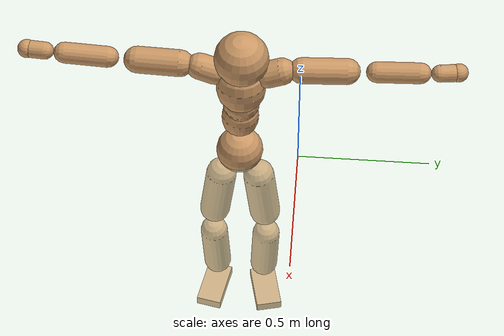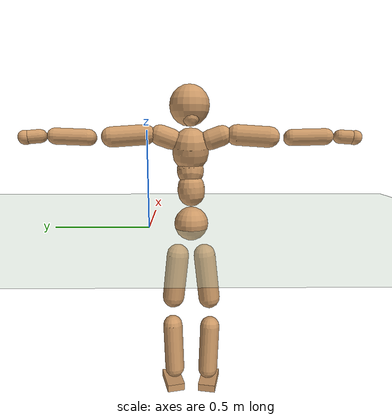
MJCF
<mujoco model="humanoid">
  <compiler coordinate="local"/>
  <default>
    <joint damping="0.0" armature="0.01" stiffness="0.0" limited="true"/>
    <geom conaffinity="1" condim="3" contype="7" margin="0.001" rgba="0.8 0.6 .4 1"/>
  </default>
  <asset>
    <texture type="skybox" builtin="gradient" rgb1=".4 .5 .6" rgb2="0 0 0" width="100" height="100"/>
    <texture builtin="flat" height="1278" mark="cross" markrgb="1 1 1" name="texgeom" random="0.01" rgb1="0.8 0.6 0.4" rgb2="0.8 0.6 0.4" type="cube" width="127"/>
    <texture builtin="checker" height="100" name="texplane" rgb1="0 0 0" rgb2="0.8 0.8 0.8" type="2d" width="100"/>
    <material name="MatPlane" reflectance="0.5" shininess="1" specular="1" texrepeat="60 60" texture="texplane"/>
    <material name="geom" texture="texgeom" texuniform="true"/>
  </asset>
  <worldbody>
    <light cutoff="100" diffuse="1 1 1" dir="-0 0 -1.3" directional="true" exponent="1" pos="0 0 1.3" specular=".1 .1 .1"/>
    <geom conaffinity="1" condim="3" name="floor" pos="0 0 0" rgba="0.8 0.9 0.8 1" size="100 100 .2" type="plane" material="MatPlane"/>
    <body name="Pelvis" pos="-0.0032 -0.2234 0.0215">
      <freejoint name="Pelvis"/>
      <geom type="sphere" contype="1" conaffinity="1" density="500" size="0.0894" pos="0.0000 0.0000 0.0000" name="Pelvis"/>
      <body name="L_Hip" pos="-0.0093 0.0641 -0.0908">
        <joint name="L_Hip_x" type="hinge" pos="0 0 0" axis="1 0 0" stiffness="800" damping="80" armature="0.02" range="-180.0000 180.0000"/>
        <joint name="L_Hip_y" type="hinge" pos="0 0 0" axis="0 1 0" stiffness="800" damping="80" armature="0.02" range="-180.0000 180.0000"/>
        <joint name="L_Hip_z" type="hinge" pos="0 0 0" axis="0 0 1" stiffness="800" damping="80" armature="0.02" range="-180.0000 180.0000"/>
        <geom type="capsule" contype="1" conaffinity="1" density="500" fromto="0.0006 0.0087 -0.0815 0.0026 0.0347 -0.3259" size="0.0597" name="L_Hip"/>
        <body name="L_Knee" pos="0.0032 0.0434 -0.4074">
          <joint name="L_Knee_x" type="hinge" pos="0 0 0" axis="1 0 0" stiffness="800" damping="80" armature="0.02" range="-180.0000 180.0000"/>
          <joint name="L_Knee_y" type="hinge" pos="0 0 0" axis="0 1 0" stiffness="800" damping="80" armature="0.02" range="-180.0000 180.0000"/>
          <joint name="L_Knee_z" type="hinge" pos="0 0 0" axis="0 0 1" stiffness="800" damping="80" armature="0.02" range="-180.0000 180.0000"/>
          <geom type="capsule" contype="1" conaffinity="1" density="500" fromto="-0.0085 -0.0030 -0.0864 -0.0339 -0.0121 -0.3457" size="0.0536" name="L_Knee"/>
          <body name="L_Ankle" pos="-0.0423 -0.0151 -0.4321">
            <joint name="L_Ankle_x" type="hinge" pos="0 0 0" axis="1 0 0" stiffness="800" damping="80" armature="0.02" range="-180.0000 180.0000"/>
            <joint name="L_Ankle_y" type="hinge" pos="0 0 0" axis="0 1 0" stiffness="800" damping="80" armature="0.02" range="-180.0000 180.0000"/>
            <joint name="L_Ankle_z" type="hinge" pos="0 0 0" axis="0 0 1" stiffness="800" damping="80" armature="0.02" range="-180.0000 180.0000"/>
            <geom type="box" contype="1" conaffinity="1" density="500" pos="0.0627 0.0147 -0.0297" size="0.0886 0.0498 0.021" quat="0.9934 0.0000 0.0000 0.1151" name="L_Ankle"/>
            <body name="L_Toe" pos="0.1253 0.0294 -0.0594">
              <joint name="L_Toe_x" type="hinge" pos="0 0 0" axis="1 0 0" stiffness="500" damping="50" armature="0.02" range="-180.0000 180.0000"/>
              <joint name="L_Toe_y" type="hinge" pos="0 0 0" axis="0 1 0" stiffness="500" damping="50" armature="0.02" range="-180.0000 180.0000"/>
              <joint name="L_Toe_z" type="hinge" pos="0 0 0" axis="0 0 1" stiffness="500" damping="50" armature="0.02" range="-180.0000 180.0000"/>
              <geom type="box" contype="1" conaffinity="1" density="500" pos="0.0000 0.0000 0.0300" size="0.001 0.0024 0.0011" quat="0.9927 0.0000 0.0000 0.1208" name="L_Toe"/>
            </body>
          </body>
        </body>
      </body>
      <body name="R_Hip" pos="-0.0076 -0.0624 -0.0893">
        <joint name="R_Hip_x" type="hinge" pos="0 0 0" axis="1 0 0" stiffness="800" damping="80" armature="0.02" range="-180.0000 180.0000"/>
        <joint name="R_Hip_y" type="hinge" pos="0 0 0" axis="0 1 0" stiffness="800" damping="80" armature="0.02" range="-180.0000 180.0000"/>
        <joint name="R_Hip_z" type="hinge" pos="0 0 0" axis="0 0 1" stiffness="800" damping="80" armature="0.02" range="-180.0000 180.0000"/>
        <geom type="capsule" contype="1" conaffinity="1" density="500" fromto="-0.0006 -0.0092 -0.0830 -0.0026 -0.0370 -0.3321" size="0.0585" name="R_Hip"/>
        <body name="R_Knee" pos="-0.0032 -0.0462 -0.4151">
          <joint name="R_Knee_x" type="hinge" pos="0 0 0" axis="1 0 0" stiffness="800" damping="80" armature="0.02" range="-180.0000 180.0000"/>
          <joint name="R_Knee_y" type="hinge" pos="0 0 0" axis="0 1 0" stiffness="800" damping="80" armature="0.02" range="-180.0000 180.0000"/>
          <joint name="R_Knee_z" type="hinge" pos="0 0 0" axis="0 0 1" stiffness="800" damping="80" armature="0.02" range="-180.0000 180.0000"/>
          <geom type="capsule" contype="1" conaffinity="1" density="500" fromto="-0.0082 0.0035 -0.0863 -0.0327 0.0140 -0.3454" size="0.0536" name="R_Knee"/>
          <body name="R_Ankle" pos="-0.0409 0.0175 -0.4317">
            <joint name="R_Ankle_x" type="hinge" pos="0 0 0" axis="1 0 0" stiffness="800" damping="80" armature="0.02" range="-180.0000 180.0000"/>
            <joint name="R_Ankle_y" type="hinge" pos="0 0 0" axis="0 1 0" stiffness="800" damping="80" armature="0.02" range="-180.0000 180.0000"/>
            <joint name="R_Ankle_z" type="hinge" pos="0 0 0" axis="0 0 1" stiffness="800" damping="80" armature="0.02" range="-180.0000 180.0000"/>
            <geom type="box" contype="1" conaffinity="1" density="500" pos="0.0648 -0.0131 -0.0256" size="0.0908 0.049 0.0213" quat="0.9950 0.0000 0.0000 -0.0999" name="R_Ankle"/>
            <body name="R_Toe" pos="0.1295 -0.0263 -0.0511">
              <joint name="R_Toe_x" type="hinge" pos="0 0 0" axis="1 0 0" stiffness="500" damping="50" armature="0.02" range="-180.0000 180.0000"/>
              <joint name="R_Toe_y" type="hinge" pos="0 0 0" axis="0 1 0" stiffness="500" damping="50" armature="0.02" range="-180.0000 180.0000"/>
              <joint name="R_Toe_z" type="hinge" pos="0 0 0" axis="0 0 1" stiffness="500" damping="50" armature="0.02" range="-180.0000 180.0000"/>
              <geom type="box" contype="1" conaffinity="1" density="500" pos="0.0000 0.0000 0.0263" size="0.0009 0.0024 0.0011" quat="0.9958 0.0000 0.0000 -0.0912" name="R_Toe"/>
            </body>
          </body>
        </body>
      </body>
      <body name="Torso" pos="-0.0243 -0.0029 0.11">
        <joint name="Torso_x" type="hinge" pos="0 0 0" axis="1 0 0" stiffness="1000" damping="100" armature="0.02" range="-180.0000 180.0000"/>
        <joint name="Torso_y" type="hinge" pos="0 0 0" axis="0 1 0" stiffness="1000" damping="100" armature="0.02" range="-180.0000 180.0000"/>
        <joint name="Torso_z" type="hinge" pos="0 0 0" axis="0 0 1" stiffness="1000" damping="100" armature="0.02" range="-180.0000 180.0000"/>
        <geom type="capsule" contype="1" conaffinity="1" density="500" fromto="0.0021 0.0042 0.0863 0.0014 0.0028 0.0575" size="0.0695" name="Torso"/>
        <body name="Spine" pos="0.0036 0.0071 0.1438">
          <joint name="Spine_x" type="hinge" pos="0 0 0" axis="1 0 0" stiffness="1000" damping="100" armature="0.02" range="-180.0000 180.0000"/>
          <joint name="Spine_y" type="hinge" pos="0 0 0" axis="0 1 0" stiffness="1000" damping="100" armature="0.02" range="-180.0000 180.0000"/>
          <joint name="Spine_z" type="hinge" pos="0 0 0" axis="0 0 1" stiffness="1000" damping="100" armature="0.02" range="-180.0000 180.0000"/>
          <geom type="capsule" contype="1" conaffinity="1" density="500" fromto="0.0117 0.0007 0.0329 0.0078 0.0005 0.0220" size="0.0689" name="Spine"/>
          <body name="Chest" pos="0.0195 0.0012 0.0549">
            <joint name="Chest_x" type="hinge" pos="0 0 0" axis="1 0 0" stiffness="1000" damping="100" armature="0.02" range="-180.0000 180.0000"/>
            <joint name="Chest_y" type="hinge" pos="0 0 0" axis="0 1 0" stiffness="1000" damping="100" armature="0.02" range="-180.0000 180.0000"/>
            <joint name="Chest_z" type="hinge" pos="0 0 0" axis="0 0 1" stiffness="1000" damping="100" armature="0.02" range="-180.0000 180.0000"/>
            <geom type="capsule" contype="1" conaffinity="1" density="500" fromto="-0.0179 -0.0017 0.0907 -0.0120 -0.0011 0.0604" size="0.0924" name="Chest"/>
            <body name="Neck" pos="-0.0268 -0.0046 0.216">
              <joint name="Neck_x" type="hinge" pos="0 0 0" axis="1 0 0" stiffness="500" damping="50" armature="0.02" range="-180.0000 180.0000"/>
              <joint name="Neck_y" type="hinge" pos="0 0 0" axis="0 1 0" stiffness="500" damping="50" armature="0.02" range="-180.0000 180.0000"/>
              <joint name="Neck_z" type="hinge" pos="0 0 0" axis="0 0 1" stiffness="500" damping="50" armature="0.02" range="-180.0000 180.0000"/>
              <geom type="capsule" contype="1" conaffinity="1" density="500" fromto="0.0112 0.0016 0.0148 0.0448 0.0063 0.0590" size="0.0434" name="Neck"/>
              <body name="Head" pos="0.0559 0.0078 0.0738">
                <joint name="Head_x" type="hinge" pos="0 0 0" axis="1 0 0" stiffness="500" damping="50" armature="0.02" range="-180.0000 180.0000"/>
                <joint name="Head_y" type="hinge" pos="0 0 0" axis="0 1 0" stiffness="500" damping="50" armature="0.02" range="-180.0000 180.0000"/>
                <joint name="Head_z" type="hinge" pos="0 0 0" axis="0 0 1" stiffness="500" damping="50" armature="0.02" range="-180.0000 180.0000"/>
                <geom type="sphere" contype="1" conaffinity="1" density="500" size="0.1013" pos="0.0000 0.0000 0.0000" name="Head"/>
              </body>
            </body>
            <body name="L_Thorax" pos="-0.0292 0.0758 0.1205">
              <joint name="L_Thorax_x" type="hinge" pos="0 0 0" axis="1 0 0" stiffness="500" damping="50" armature="0.02" range="-180.0000 180.0000"/>
              <joint name="L_Thorax_y" type="hinge" pos="0 0 0" axis="0 1 0" stiffness="500" damping="50" armature="0.02" range="-180.0000 180.0000"/>
              <joint name="L_Thorax_z" type="hinge" pos="0 0 0" axis="0 0 1" stiffness="500" damping="50" armature="0.02" range="-180.0000 180.0000"/>
              <geom type="capsule" contype="1" conaffinity="1" density="500" fromto="-0.0014 0.0181 0.0064 -0.0057 0.0723 0.0254" size="0.051" name="L_Thorax"/>
              <body name="L_Shoulder" pos="-0.0072 0.0904 0.0318">
                <joint name="L_Shoulder_x" type="hinge" pos="0 0 0" axis="1 0 0" stiffness="500" damping="50" armature="0.02" range="-720.0000 720.0000"/>
                <joint name="L_Shoulder_y" type="hinge" pos="0 0 0" axis="0 1 0" stiffness="500" damping="50" armature="0.02" range="-720.0000 720.0000"/>
                <joint name="L_Shoulder_z" type="hinge" pos="0 0 0" axis="0 0 1" stiffness="500" damping="50" armature="0.02" range="-720.0000 720.0000"/>
                <geom type="capsule" contype="1" conaffinity="1" density="500" fromto="-0.0055 0.0551 -0.0037 -0.0221 0.2204 -0.0150" size="0.0494" name="L_Shoulder"/>
                <body name="L_Elbow" pos="-0.0277 0.2755 -0.0187">
                  <joint name="L_Elbow_x" type="hinge" pos="0 0 0" axis="1 0 0" stiffness="500" damping="50" armature="0.02" range="-720.0000 720.0000"/>
                  <joint name="L_Elbow_y" type="hinge" pos="0 0 0" axis="0 1 0" stiffness="500" damping="50" armature="0.02" range="-720.0000 720.0000"/>
                  <joint name="L_Elbow_z" type="hinge" pos="0 0 0" axis="0 0 1" stiffness="500" damping="50" armature="0.02" range="-720.0000 720.0000"/>
                  <geom type="capsule" contype="1" conaffinity="1" density="500" fromto="-0.0005 0.0536 0.0021 -0.0022 0.2143 0.0083" size="0.0395" name="L_Elbow"/>
                  <body name="L_Wrist" pos="-0.0027 0.2679 0.0104">
                    <joint name="L_Wrist_x" type="hinge" pos="0 0 0" axis="1 0 0" stiffness="300" damping="30" armature="0.02" range="-180.0000 180.0000"/>
                    <joint name="L_Wrist_y" type="hinge" pos="0 0 0" axis="0 1 0" stiffness="300" damping="30" armature="0.02" range="-180.0000 180.0000"/>
                    <joint name="L_Wrist_z" type="hinge" pos="0 0 0" axis="0 0 1" stiffness="300" damping="30" armature="0.02" range="-180.0000 180.0000"/>
                    <geom type="capsule" contype="1" conaffinity="1" density="500" fromto="-0.0032 0.0175 -0.0016 -0.0130 0.0699 -0.0063" size="0.0326" name="L_Wrist"/>
                    <body name="L_Hand" pos="-0.0162 0.0873 -0.0078">
                      <joint name="L_Hand_x" type="hinge" pos="0 0 0" axis="1 0 0" stiffness="300" damping="30" armature="0.02" range="-180.0000 180.0000"/>
                      <joint name="L_Hand_y" type="hinge" pos="0 0 0" axis="0 1 0" stiffness="300" damping="30" armature="0.02" range="-180.0000 180.0000"/>
                      <joint name="L_Hand_z" type="hinge" pos="0 0 0" axis="0 0 1" stiffness="300" damping="30" armature="0.02" range="-180.0000 180.0000"/>
                      <geom type="sphere" contype="1" conaffinity="1" density="500" size="0.0347" pos="0.0000 0.0000 0.0000" name="L_Hand"/>
                    </body>
                  </body>
                </body>
              </body>
            </body>
            <body name="R_Thorax" pos="-0.0337 -0.0795 0.1168">
              <joint name="R_Thorax_x" type="hinge" pos="0 0 0" axis="1 0 0" stiffness="500" damping="50" armature="0.02" range="-180.0000 180.0000"/>
              <joint name="R_Thorax_y" type="hinge" pos="0 0 0" axis="0 1 0" stiffness="500" damping="50" armature="0.02" range="-180.0000 180.0000"/>
              <joint name="R_Thorax_z" type="hinge" pos="0 0 0" axis="0 0 1" stiffness="500" damping="50" armature="0.02" range="-180.0000 180.0000"/>
              <geom type="capsule" contype="1" conaffinity="1" density="500" fromto="-0.0013 -0.0191 0.0068 -0.0053 -0.0765 0.0271" size="0.0499" name="R_Thorax"/>
              <body name="R_Shoulder" pos="-0.0066 -0.0956 0.0338">
                <joint name="R_Shoulder_x" type="hinge" pos="0 0 0" axis="1 0 0" stiffness="500" damping="50" armature="0.02" range="-720.0000 720.0000"/>
                <joint name="R_Shoulder_y" type="hinge" pos="0 0 0" axis="0 1 0" stiffness="500" damping="50" armature="0.02" range="-720.0000 720.0000"/>
                <joint name="R_Shoulder_z" type="hinge" pos="0 0 0" axis="0 0 1" stiffness="500" damping="50" armature="0.02" range="-720.0000 720.0000"/>
                <geom type="capsule" contype="1" conaffinity="1" density="500" fromto="-0.0044 -0.0534 -0.0034 -0.0176 -0.2136 -0.0137" size="0.0507" name="R_Shoulder"/>
                <body name="R_Elbow" pos="-0.022 -0.267 -0.0171">
                  <joint name="R_Elbow_x" type="hinge" pos="0 0 0" axis="1 0 0" stiffness="500" damping="50" armature="0.02" range="-720.0000 720.0000"/>
                  <joint name="R_Elbow_y" type="hinge" pos="0 0 0" axis="0 1 0" stiffness="500" damping="50" armature="0.02" range="-720.0000 720.0000"/>
                  <joint name="R_Elbow_z" type="hinge" pos="0 0 0" axis="0 0 1" stiffness="500" damping="50" armature="0.02" range="-720.0000 720.0000"/>
                  <geom type="capsule" contype="1" conaffinity="1" density="500" fromto="-0.0017 -0.0545 0.0014 -0.0068 -0.2180 0.0055" size="0.0397" name="R_Elbow"/>
                  <body name="R_Wrist" pos="-0.0085 -0.2725 0.0069">
                    <joint name="R_Wrist_x" type="hinge" pos="0 0 0" axis="1 0 0" stiffness="300" damping="30" armature="0.02" range="-180.0000 180.0000"/>
                    <joint name="R_Wrist_y" type="hinge" pos="0 0 0" axis="0 1 0" stiffness="300" damping="30" armature="0.02" range="-180.0000 180.0000"/>
                    <joint name="R_Wrist_z" type="hinge" pos="0 0 0" axis="0 0 1" stiffness="300" damping="30" armature="0.02" range="-180.0000 180.0000"/>
                    <geom type="capsule" contype="1" conaffinity="1" density="500" fromto="-0.0021 -0.0174 -0.0011 -0.0082 -0.0695 -0.0045" size="0.033" name="R_Wrist"/>
                    <body name="R_Hand" pos="-0.0103 -0.0869 -0.0057">
                      <joint name="R_Hand_x" type="hinge" pos="0 0 0" axis="1 0 0" stiffness="300" damping="30" armature="0.02" range="-180.0000 180.0000"/>
                      <joint name="R_Hand_y" type="hinge" pos="0 0 0" axis="0 1 0" stiffness="300" damping="30" armature="0.02" range="-180.0000 180.0000"/>
                      <joint name="R_Hand_z" type="hinge" pos="0 0 0" axis="0 0 1" stiffness="300" damping="30" armature="0.02" range="-180.0000 180.0000"/>
                      <geom type="sphere" contype="1" conaffinity="1" density="500" size="0.0347" pos="0.0000 0.0000 0.0000" name="R_Hand"/>
                    </body>
                  </body>
                </body>
              </body>
            </body>
          </body>
        </body>
      </body>
    </body>
  </worldbody>
  <actuator>
    <motor name="L_Hip_x" joint="L_Hip_x" gear="500"/>
    <motor name="L_Hip_y" joint="L_Hip_y" gear="500"/>
    <motor name="L_Hip_z" joint="L_Hip_z" gear="500"/>
    <motor name="L_Knee_x" joint="L_Knee_x" gear="500"/>
    <motor name="L_Knee_y" joint="L_Knee_y" gear="500"/>
    <motor name="L_Knee_z" joint="L_Knee_z" gear="500"/>
    <motor name="L_Ankle_x" joint="L_Ankle_x" gear="500"/>
    <motor name="L_Ankle_y" joint="L_Ankle_y" gear="500"/>
    <motor name="L_Ankle_z" joint="L_Ankle_z" gear="500"/>
    <motor name="L_Toe_x" joint="L_Toe_x" gear="500"/>
    <motor name="L_Toe_y" joint="L_Toe_y" gear="500"/>
    <motor name="L_Toe_z" joint="L_Toe_z" gear="500"/>
    <motor name="R_Hip_x" joint="R_Hip_x" gear="500"/>
    <motor name="R_Hip_y" joint="R_Hip_y" gear="500"/>
    <motor name="R_Hip_z" joint="R_Hip_z" gear="500"/>
    <motor name="R_Knee_x" joint="R_Knee_x" gear="500"/>
    <motor name="R_Knee_y" joint="R_Knee_y" gear="500"/>
    <motor name="R_Knee_z" joint="R_Knee_z" gear="500"/>
    <motor name="R_Ankle_x" joint="R_Ankle_x" gear="500"/>
    <motor name="R_Ankle_y" joint="R_Ankle_y" gear="500"/>
    <motor name="R_Ankle_z" joint="R_Ankle_z" gear="500"/>
    <motor name="R_Toe_x" joint="R_Toe_x" gear="500"/>
    <motor name="R_Toe_y" joint="R_Toe_y" gear="500"/>
    <motor name="R_Toe_z" joint="R_Toe_z" gear="500"/>
    <motor name="Torso_x" joint="Torso_x" gear="500"/>
    <motor name="Torso_y" joint="Torso_y" gear="500"/>
    <motor name="Torso_z" joint="Torso_z" gear="500"/>
    <motor name="Spine_x" joint="Spine_x" gear="500"/>
    <motor name="Spine_y" joint="Spine_y" gear="500"/>
    <motor name="Spine_z" joint="Spine_z" gear="500"/>
    <motor name="Chest_x" joint="Chest_x" gear="500"/>
    <motor name="Chest_y" joint="Chest_y" gear="500"/>
    <motor name="Chest_z" joint="Chest_z" gear="500"/>
    <motor name="Neck_x" joint="Neck_x" gear="500"/>
    <motor name="Neck_y" joint="Neck_y" gear="500"/>
    <motor name="Neck_z" joint="Neck_z" gear="500"/>
    <motor name="Head_x" joint="Head_x" gear="500"/>
    <motor name="Head_y" joint="Head_y" gear="500"/>
    <motor name="Head_z" joint="Head_z" gear="500"/>
    <motor name="L_Thorax_x" joint="L_Thorax_x" gear="500"/>
    <motor name="L_Thorax_y" joint="L_Thorax_y" gear="500"/>
    <motor name="L_Thorax_z" joint="L_Thorax_z" gear="500"/>
    <motor name="L_Shoulder_x" joint="L_Shoulder_x" gear="500"/>
    <motor name="L_Shoulder_y" joint="L_Shoulder_y" gear="500"/>
    <motor name="L_Shoulder_z" joint="L_Shoulder_z" gear="500"/>
    <motor name="L_Elbow_x" joint="L_Elbow_x" gear="500"/>
    <motor name="L_Elbow_y" joint="L_Elbow_y" gear="500"/>
    <motor name="L_Elbow_z" joint="L_Elbow_z" gear="500"/>
    <motor name="L_Wrist_x" joint="L_Wrist_x" gear="500"/>
    <motor name="L_Wrist_y" joint="L_Wrist_y" gear="500"/>
    <motor name="L_Wrist_z" joint="L_Wrist_z" gear="500"/>
    <motor name="L_Hand_x" joint="L_Hand_x" gear="500"/>
    <motor name="L_Hand_y" joint="L_Hand_y" gear="500"/>
    <motor name="L_Hand_z" joint="L_Hand_z" gear="500"/>
    <motor name="R_Thorax_x" joint="R_Thorax_x" gear="500"/>
    <motor name="R_Thorax_y" joint="R_Thorax_y" gear="500"/>
    <motor name="R_Thorax_z" joint="R_Thorax_z" gear="500"/>
    <motor name="R_Shoulder_x" joint="R_Shoulder_x" gear="500"/>
    <motor name="R_Shoulder_y" joint="R_Shoulder_y" gear="500"/>
    <motor name="R_Shoulder_z" joint="R_Shoulder_z" gear="500"/>
    <motor name="R_Elbow_x" joint="R_Elbow_x" gear="500"/>
    <motor name="R_Elbow_y" joint="R_Elbow_y" gear="500"/>
    <motor name="R_Elbow_z" joint="R_Elbow_z" gear="500"/>
    <motor name="R_Wrist_x" joint="R_Wrist_x" gear="500"/>
    <motor name="R_Wrist_y" joint="R_Wrist_y" gear="500"/>
    <motor name="R_Wrist_z" joint="R_Wrist_z" gear="500"/>
    <motor name="R_Hand_x" joint="R_Hand_x" gear="500"/>
    <motor name="R_Hand_y" joint="R_Hand_y" gear="500"/>
    <motor name="R_Hand_z" joint="R_Hand_z" gear="500"/>
  </actuator>
  <contact>
    <exclude body1="Torso" body2="Chest"/>
    <exclude body1="Head" body2="Chest"/>
    <exclude body1="R_Knee" body2="R_Toe"/>
    <exclude body1="R_Knee" body2="L_Ankle"/>
    <exclude body1="R_Knee" body2="L_Toe"/>
    <exclude body1="L_Knee" body2="L_Toe"/>
    <exclude body1="L_Knee" body2="R_Ankle"/>
    <exclude body1="L_Knee" body2="R_Toe"/>
    <exclude body1="L_Shoulder" body2="Chest"/>
    <exclude body1="R_Shoulder" body2="Chest"/>
  </contact>
  <sensor/>
  <size njmax="700" nconmax="700"/>
</mujoco>
